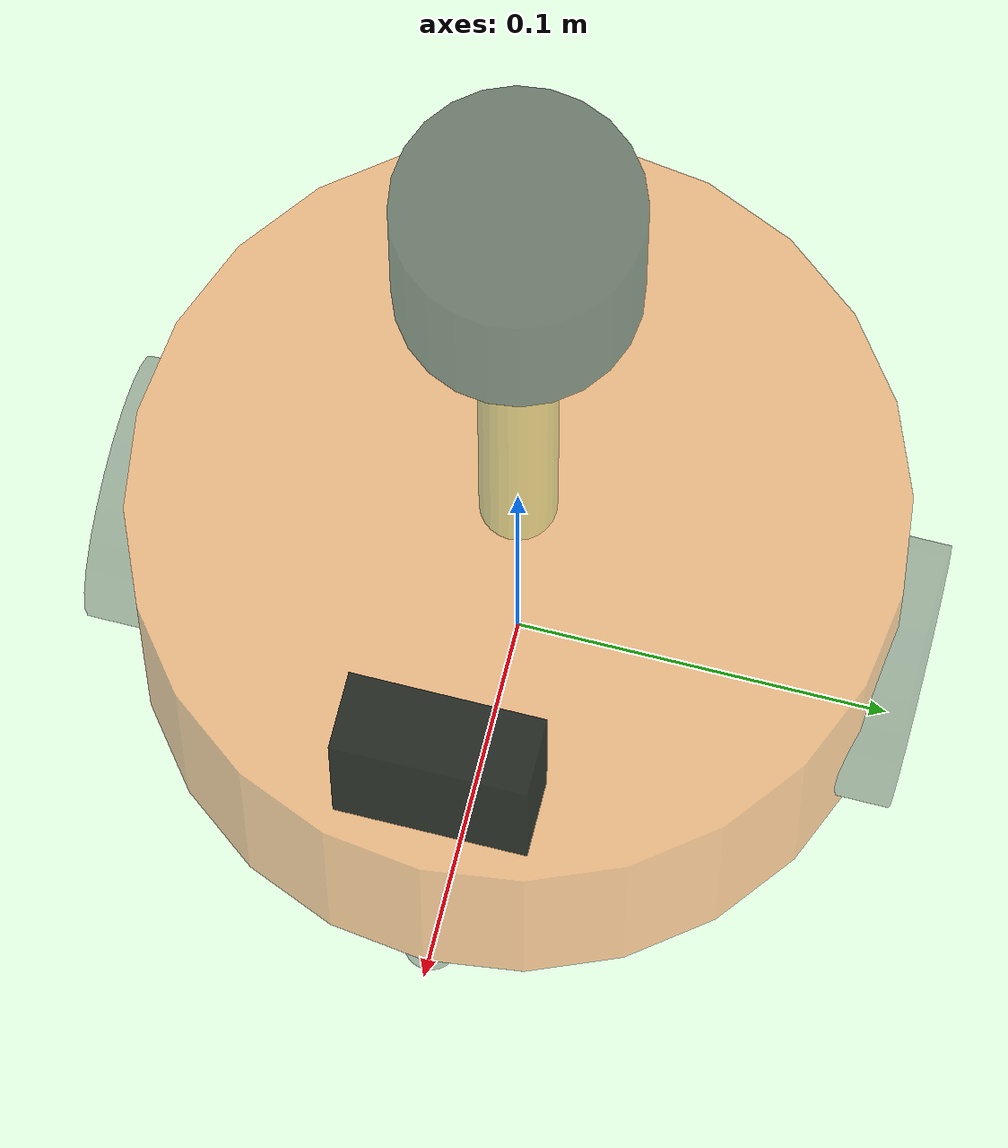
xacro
<robot name="mycar" xmlns:xacro="http://wiki.ros.org/xacro" >
    <!-- 包含底盘,摄像头与雷达的xacro文件 -->
        <!-- 包含操作相当于复制粘贴,顺便去除根标签 -->
    <xacro:include filename="demo05_car_base.urdf.xacro" />
    <xacro:include filename="demo06_car_camera.urdf.xacro" />
    <xacro:include filename="demo07_car_laser.urdf.xacro" />

</robot>

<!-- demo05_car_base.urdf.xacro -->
<robot name="mycar" xmlns:xacro="http://wiki.ros.org/xacro" >
    <xacro:property name="footprint_radius" value="0.001" />
    <!-- 1.·添加 base_footprint -->
    <link name="base_footprint">
        <visual>
            <geometry>
                <sphere radius="${footprint_radius}" />
            </geometry>
        </visual>
    </link>

    <!-- 2.添加底盘 -->
    <!--
        形状:圆柱
        半径:0.1m
        高度:0.08m
        离地半径:0.015m
     -->

    <xacro:property name="base_radius" value="0.1" />
    <xacro:property name="base_length" value="0.08" />
    <xacro:property name="lidi" value="0.015" />
    <xacro:property name="base_joint_z" value="${base_length/2+lidi}" />

     <!-- 2-1.link -->
    <link name="base_link">
        <visual>
            <geometry>
                <cylinder radius="${base_radius}" length="${base_length}"/>
            </geometry>
            <!-- 一般偏移量通过joint来设置，此处一般默认为0 -->
            <origin xyz="0 0 0" rpy="0 0 0" />

            <material name="baselink_color">
                <color rgba="1.0 0.5 0.2 0.5" />

            </material>

        </visual>

    </link>
    <!-- 2-2.joint -->
    <joint name="link2footprint" type="fixed" >
        <parent link="base_footprint" />
        <child link="base_link"  />
        <!-- 关节z上的设置等于车体高度/2+离地间距 -->
        <origin xyz="0 0 ${base_joint_z}" rpy="0 0 0" />

    </joint>

    <!-- 3.添加驱动轮 -->
    <!--
        形状：圆柱
        半径：0.035m
        长度：0.015m
     -->
    <!-- 3-1.link -->
    <!-- 属性 -->
    <xacro:property name="wheel_radius" value="0.035" />
    <xacro:property name="wheel_length" value="0.015" />
    <xacro:property name="PI" value="1.57" />
    <!-- 注意结果是负数 -->
    <xacro:property name="wheel_joint_z" value="${(base_length/2 +lidi-wheel_radius)*-1}" />

    <xacro:macro name="wheel_func" params="wheel_name flag">
    <link name="${wheel_name}_wheel">
        <visual>
            <geometry>
                <cylinder radius="${wheel_radius}" length="${wheel_length}"/>
            </geometry>
            <!-- 一般偏移量xyz通过joint来设置，此处一般默认为0,翻滚可通过此设置 -->
            <origin xyz="0 0 0" rpy="${PI} 0 0" />
            <material name="wheel_color">
                <color rgba="0 0 0 0.3" />
            </material>
        </visual>
    </link>

    <joint name="${wheel_name}2link" type="continuous" >
        <parent link="base_link" />
        <child link="${wheel_name}_wheel"  />
        <!--
            x 无偏移
            y 车体半径
            z
         -->
        <!-- 关节z上的设置等于车体高度/2+离地间距 -->
        <origin xyz="0 ${0.1*flag} ${wheel_joint_z}" rpy="0 0 0" />
        <!-- 沿着y轴转动 -->
        <axis xyz ="0 1 0" />
    </joint>

    </xacro:macro>

    <xacro:wheel_func wheel_name="left" flag="1" />
    <xacro:wheel_func wheel_name="right" flag="-1" />

    <!-- 4.添加万相向轮 -->
    <!--
        形状:球状
        半径:0.0075m
     -->

    <xacro:property name="small_wheel_radius" value="0.0075" />
    <!-- z的偏移量=车体高度/2+离地间距-万向轮半径 -->
    <xacro:property name="small_joint_z" value="${(base_length/2+lidi-small_wheel_radius)*-1}" />

    <xacro:macro name="small_wheel_func" params="small_wheel_name flag">
     <!-- 4-1.link -->
    <link name="${small_wheel_name}_wheel">
        <visual>
            <geometry>
                <sphere radius="${small_wheel_radius}" />
            </geometry>
            <!-- 一般偏移量xyz通过joint来设置，此处一般默认为0,翻滚可通过此设置 -->
            <origin xyz="0 0 0" rpy="0 0 0" />
            <material name="wheel_color">
                <color rgba="0 0 0 0.3" />
            </material>
        </visual>
    </link>

    <!-- 4-2. joint -->
    <joint name="${small_wheel_name}2link" type="continuous" >
        <parent link="base_link" />
        <child link="${small_wheel_name}_wheel"  />
        <!--
            x 无偏移
            y 车体半径
            z
         -->
        <!-- 关节z上的设置等于车体高度/2+离地间距 -->
        <origin xyz="${0.0925*flag} 0 ${small_joint_z}" rpy="0 0 0" />
        <!-- 沿着y轴转动 -->
        <axis xyz ="0 1 0" />
    </joint>

    </xacro:macro >

    <xacro:small_wheel_func small_wheel_name="front" flag="1" />
    <xacro:small_wheel_func small_wheel_name="back" flag="-1" />

</robot>

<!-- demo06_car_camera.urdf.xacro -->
<robot name="mycar" xmlns:xacro="http://wiki.ros.org/xacro" >
    <!-- 摄像头部件 -->
    <!-- 1.参数 -->
    <!--
        参数:
            连杆属性:厚度 宽度 高度
            关节属性 x y z
     -->
    <xacro:property name="camera_length" value="0.02" />    <!--厚度(x)-->
    <xacro:property name="camera_width" value="0.05" />     <!--宽度(y)-->
    <xacro:property name="camera_height" value="0.05" />     <!--高度(z)-->
    <xacro:property name="joint_camera_x" value="0.08" />
    <xacro:property name="joint_camera_y" value="0" />
    <xacro:property name="joint_camera_z" value="${base_length/2+camera_height/2}" />

    <!-- 2.设计连杆和关节 -->
    <link name="camera">
        <visual>
            <geometry>
                <box size="${camera_length} ${camera_width} ${camera_height}" />
            </geometry>

        <material name="black">
            <color rgba="0 0 0 0.8" />
        </material>
        </visual>
    </link>
    <joint name="camera2base" type="fixed" >
        <parent link="base_link" />
        <child link="camera" />
        <origin xyz="${joint_camera_x} ${joint_camera_y} ${joint_camera_z}" rpy="0 0 0" />
    </joint>

</robot>

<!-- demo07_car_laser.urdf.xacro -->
<robot name="mycar" xmlns:xacro="http://wiki.ros.org/xacro" >
    <!-- 雷达部件 -->
    <!-- 参数 -->
    <!--
        1.支架
            支架尺寸:半径 高度
            关节偏移量: x y z
        2.雷达
            雷达尺寸
            关节偏移量: x y z
     -->
    <xacro:property name="support_radius" value="0.01" />
    <xacro:property name="support_length" value="0.15" />
    <xacro:property name="laser_radius" value="0.03" />
    <xacro:property name="laser_length" value="0.05" />

    <xacro:property name="joint_support_x" value="0" />
    <xacro:property name="joint_support_y" value="0" />
    <!-- z=车体高度/2+支架高度/2 -->
    <xacro:property name="joint_support_z" value="${base_length/2+support_length/2}" />

    <xacro:property name="joint_laser_x" value="0" />
    <xacro:property name="joint_laser_y" value="0" />
    <!-- z=支架高度/2+雷达高度/2 -->
    <xacro:property name="joint_laser_z" value="${support_length/2+laser_length/2}" />

    <!-- 1.支架 -->
    <link name="support" >
        <visual>
            <geometry>
                <cylinder radius="${support_radius}" length="${support_length}" />
            </geometry>
            <material name="yellow" >
                <color rgba="0.8 0.5 0.0 0.5" />
            </material>
        </visual>

    </link>
    <joint name="support2base" type="fixed">
        <parent link="base_link" />
        <child link="support" />
        <origin xyz="${joint_support_x} ${joint_support_y} ${joint_support_z}" rpy="0 0 0" />
    </joint>

    <!-- 2.雷达 -->
    <link name="laser" >
        <visual>
            <geometry>
                <cylinder radius="${laser_radius}" length="${laser_length}" />
            </geometry>
            <material name="black" >
                <color rgba="0 0 0 0.5" />
            </material>
        </visual>

    </link>
    <joint name="laser2support" type="fixed">
        <parent link="support" />
        <child link="laser" />
        <origin xyz="${joint_laser_x} ${joint_laser_y} ${joint_laser_z}" rpy="0 0 0" />
    </joint>

</robot>
